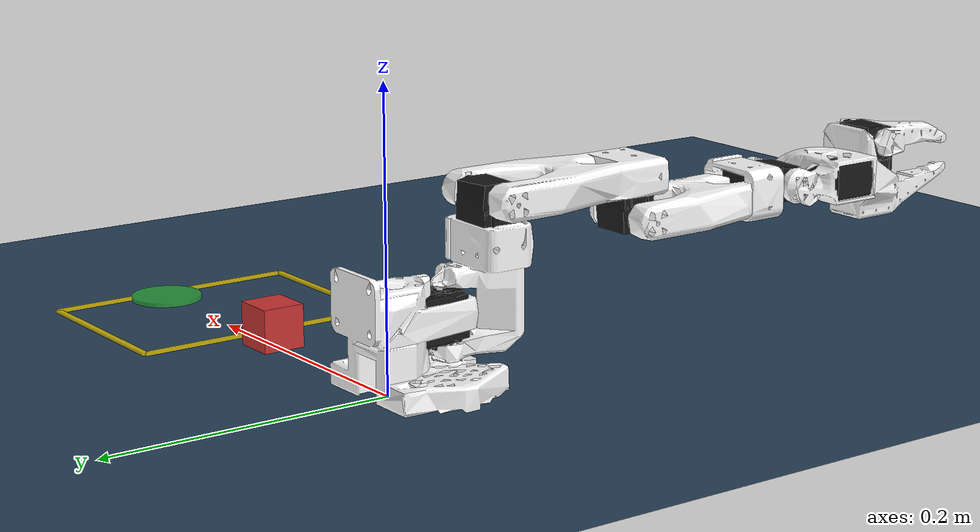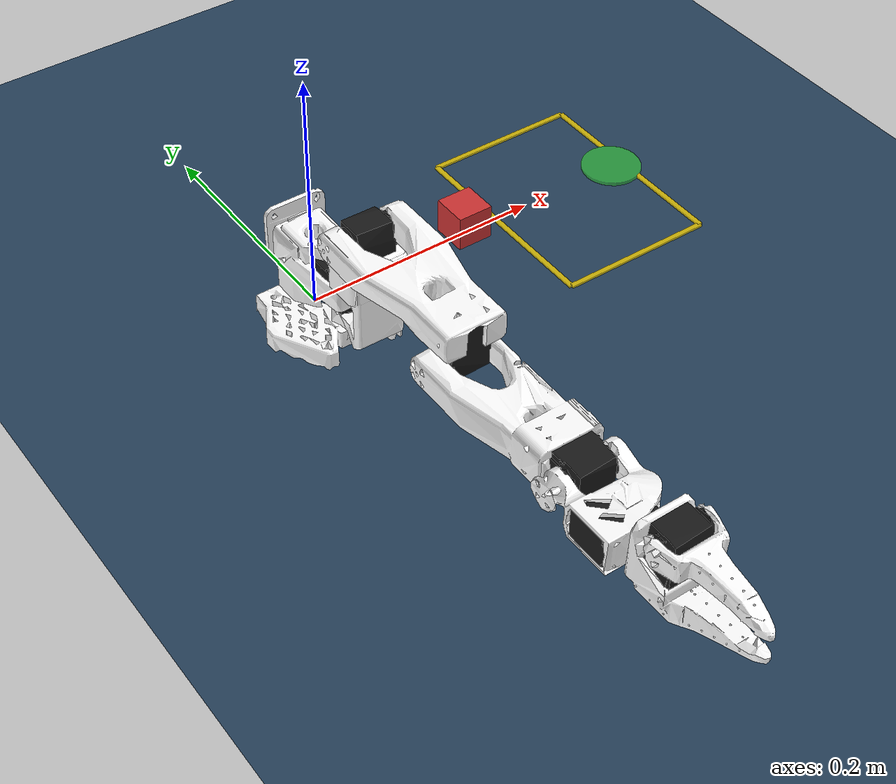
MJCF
<mujoco model="so_arm100_push_scene">
  <include file="./assets_so100/so_arm100_local.xml"/>

  <statistic center="0.235 -0.01 0.08" extent="0.6"/>

  <visual>
    <headlight diffuse="0.6 0.6 0.6" ambient="0.3 0.3 0.3" specular="0 0 0"/>
    <rgba haze="0.15 0.25 0.35 1"/>
    <global azimuth="150" elevation="-20" offwidth="640" offheight="480"/>
  </visual>

  <asset>
    <texture type="skybox" builtin="gradient" rgb1="0.3 0.5 0.7" rgb2="0 0 0"
             width="512" height="3072"/>
    <texture type="2d" name="groundplane" builtin="checker" mark="edge"
             rgb1="0.2 0.3 0.4" rgb2="0.1 0.2 0.3" markrgb="0.8 0.8 0.8"
             width="300" height="300"/>
    <material name="groundplane" texture="groundplane" texuniform="true"
              texrepeat="5 5" reflectance="0.2"/>
  </asset>

  <worldbody>
    <light pos="0 0 1.5" dir="0 0 -1" directional="true"/>

    <geom name="floor" size="0 0 0.05" type="plane" material="groundplane"/>

    <!-- Workspace 边框 (黄色, 不参与碰撞) -->
    <geom name="ws_edge_1" type="box" pos="0.17  -0.01 0.001" size="0.002 0.09 0.001"
          rgba="1 0.85 0 0.8" contype="0" conaffinity="0"/>
    <geom name="ws_edge_2" type="box" pos="0.30  -0.01 0.001" size="0.002 0.09 0.001"
          rgba="1 0.85 0 0.8" contype="0" conaffinity="0"/>
    <geom name="ws_edge_3" type="box" pos="0.235 -0.10 0.001" size="0.065 0.002 0.001"
          rgba="1 0.85 0 0.8" contype="0" conaffinity="0"/>
    <geom name="ws_edge_4" type="box" pos="0.235  0.08 0.001" size="0.065 0.002 0.001"
          rgba="1 0.85 0 0.8" contype="0" conaffinity="0"/>

    <!-- 顶部俯视相机 (固定在 workspace 正上方, 验证视野用) -->
    <camera name="top_cam" pos="0.235 -0.01 0.45"
            xyaxes="1 0 0  0 1 0"/>

    <!-- cube -->
    <body name="cube" pos="0.14 0.00 0.015">
      <freejoint name="cube_free"/>
      <geom name="cube_geom" type="box" size="0.015 0.015 0.015"
            rgba="0.8 0.2 0.2 1"
            mass="0.05"
            friction="1.0 0.005 0.0001"/>
    </body>

    <!-- target (固定位置，在工作区内靠近边缘) -->
    <body name="target" pos="0.29 0.00 0.001">
      <geom name="target_geom" type="cylinder" size="0.025 0.0015"
            rgba="0.2 0.85 0.2 0.6"
            contype="0" conaffinity="0"/>
    </body>
  </worldbody>
</mujoco>

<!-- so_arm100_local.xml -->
<mujoco model="so_arm100">
  <compiler angle="radian" meshdir="/home/aloha/lerobot/env_so100/trs_so_arm100/assets/"/>

  <option cone="elliptic" impratio="10"/>

  <asset>
    <material name="white" rgba="1 1 1 1"/>
    <material name="black" rgba="0.1 0.1 0.1 1"/>

    <mesh name="Base" file="Base.stl"/>
    <mesh name="Base_Motor" file="Base_Motor.stl"/>
    <mesh name="Rotation_Pitch" file="Rotation_Pitch.stl"/>
    <mesh name="Rotation_Pitch_Motor" file="Rotation_Pitch_Motor.stl"/>
    <mesh name="Upper_Arm" file="Upper_Arm.stl"/>
    <mesh name="Upper_Arm_Motor" file="Upper_Arm_Motor.stl"/>
    <mesh name="Lower_Arm" file="Lower_Arm.stl"/>
    <mesh name="Lower_Arm_Motor" file="Lower_Arm_Motor.stl"/>
    <mesh name="Wrist_Pitch_Roll" file="Wrist_Pitch_Roll.stl"/>
    <mesh name="Wrist_Pitch_Roll_Motor" file="Wrist_Pitch_Roll_Motor.stl"/>
    <mesh name="Fixed_Jaw" file="Fixed_Jaw.stl"/>
    <mesh name="Fixed_Jaw_Motor" file="Fixed_Jaw_Motor.stl"/>
    <mesh name="Fixed_Jaw_Collision_1" file="Fixed_Jaw_Collision_1.stl"/>
    <mesh name="Fixed_Jaw_Collision_2" file="Fixed_Jaw_Collision_2.stl"/>
    <mesh name="Moving_Jaw" file="Moving_Jaw.stl"/>
    <mesh name="Moving_Jaw_Collision_1" file="Moving_Jaw_Collision_1.stl"/>
    <mesh name="Moving_Jaw_Collision_2" file="Moving_Jaw_Collision_2.stl"/>
    <mesh name="Moving_Jaw_Collision_3" file="Moving_Jaw_Collision_3.stl"/>
  </asset>

  <default>
    <default class="so_arm100">
      <joint frictionloss="0.1" armature="0.1"/>
      <position kp="50" dampratio="1" forcerange="-3.5 3.5"/>
      <default class="Rotation">
        <joint axis="0 1 0" range="-1.92 1.92"/>
      </default>
      <default class="Pitch">
        <joint axis="1 0 0" range="-3.32 0.174"/>
      </default>
      <default class="Elbow">
        <joint axis="1 0 0" range="-0.174 3.14"/>
      </default>
      <default class="Wrist_Pitch">
        <joint axis="1 0 0" range="-1.66 1.66"/>
      </default>
      <default class="Wrist_Roll">
        <joint axis="0 1 0" range="-2.79 2.79"/>
      </default>
      <default class="Jaw">
        <joint axis="0 0 1" range="-0.174 1.75"/>
      </default>
      <default class="visual">
        <geom type="mesh" contype="0" conaffinity="0" density="0" group="2" material="white"/>
        <default class="motor_visual">
          <geom material="black"/>
        </default>
      </default>
      <default class="collision">
        <geom group="3" type="mesh" material="white"/>
        <default class="finger_collision">
          <geom type="box" solimp="2 1 0.01" solref="0.01 1" friction="1 0.005 0.0001"/>
        </default>
      </default>
    </default>
  </default>

  <worldbody>
    <body name="Base" childclass="so_arm100">
      <geom type="mesh" mesh="Base" class="visual"/>
      <geom type="mesh" mesh="Base_Motor" class="motor_visual"/>
      <geom type="mesh" mesh="Base" class="collision"/>
      <body name="Rotation_Pitch" pos="0 -0.0452 0.0165" quat="0.707105 0.707108 0 0">
        <inertial pos="-9.07886e-05 0.0590972 0.031089" quat="0.363978 0.441169 -0.623108 0.533504" mass="0.119226"
          diaginertia="5.94278e-05 5.89975e-05 3.13712e-05"/>
        <joint name="Rotation" class="Rotation"/>
        <geom type="mesh" mesh="Rotation_Pitch" class="visual"/>
        <geom type="mesh" mesh="Rotation_Pitch_Motor" class="motor_visual"/>
        <geom type="mesh" mesh="Rotation_Pitch" class="collision"/>
        <body name="Upper_Arm" pos="0 0.1025 0.0306" euler="1.57079 0 0">
          <inertial pos="-1.72052e-05 0.0701802 0.00310545" quat="0.50104 0.498994 -0.493562 0.50632" mass="0.162409"
            diaginertia="0.000213312 0.000167164 7.01522e-05"/>
          <joint name="Pitch" class="Pitch"/>
          <geom type="mesh" mesh="Upper_Arm" class="visual"/>
          <geom type="mesh" mesh="Upper_Arm_Motor" class="motor_visual"/>
          <geom type="mesh" mesh="Upper_Arm" class="collision"/>
          <body name="Lower_Arm" pos="0 0.11257 0.028" euler="-1.57079 0 0">
            <inertial pos="-0.00339604 0.00137796 0.0768007" quat="0.701995 0.0787996 0.0645626 0.704859"
              mass="0.147968" diaginertia="0.000138803 0.000107748 4.84242e-05"/>
            <joint name="Elbow" class="Elbow"/>
            <geom type="mesh" mesh="Lower_Arm" class="visual"/>
            <geom type="mesh" mesh="Lower_Arm_Motor" class="motor_visual"/>
            <geom type="mesh" mesh="Lower_Arm" class="collision"/>
            <body name="Wrist_Pitch_Roll" pos="0 0.0052 0.1349" euler="-1.57079 0 0">
              <inertial pos="-0.00852653 -0.0352279 -2.34622e-05" quat="-0.0522806 0.705235 0.0549524 0.704905"
                mass="0.0661321" diaginertia="3.45403e-05 2.39041e-05 1.94704e-05"/>
              <joint name="Wrist_Pitch" class="Wrist_Pitch"/>
              <geom type="mesh" mesh="Wrist_Pitch_Roll" class="visual"/>
              <geom type="mesh" mesh="Wrist_Pitch_Roll_Motor" class="motor_visual"/>
              <geom type="mesh" mesh="Wrist_Pitch_Roll" class="collision"/>
              <body name="Fixed_Jaw" pos="0 -0.0601 0" euler="0 1.57079 0">
                <inertial pos="0.00552377 -0.0280167 0.000483583" quat="0.41836 0.620891 -0.350644 0.562599"
                  mass="0.0929859" diaginertia="5.03136e-05 4.64098e-05 2.72961e-05"/>
                <joint name="Wrist_Roll" class="Wrist_Roll"/>
                <geom type="mesh" mesh="Fixed_Jaw" class="visual"/>
                <geom type="mesh" mesh="Fixed_Jaw_Motor" class="motor_visual"/>
                <geom type="mesh" mesh="Fixed_Jaw_Collision_1" class="collision"/>
                <geom type="mesh" mesh="Fixed_Jaw_Collision_2" class="collision"/>
                <geom class="finger_collision" name="fixed_jaw_pad_1" size="0.001 0.005 0.004" pos="0.0089 -0.1014 0"/>
                <geom class="finger_collision" name="fixed_jaw_pad_2" size="0.001 0.005 0.006" pos="0.0109 -0.0914 0"/>
                <geom class="finger_collision" name="fixed_jaw_pad_3" size="0.001 0.01 0.007" pos="0.0126 -0.0768 0"/>
                <geom class="finger_collision" name="fixed_jaw_pad_4" size="0.001 0.01 0.008" pos="0.0143 -0.0572 0"/>
                <camera name="wrist_cam" pos="0 0 0.07"
                        euler="5 0 0"/>
                <body name="Moving_Jaw" pos="-0.0202 -0.0244 0" quat="1.34924e-11 -3.67321e-06 1 -3.67321e-06">
                  <inertial pos="-0.00161745 -0.0303473 0.000449646" quat="0.696562 0.716737 -0.0239844 -0.0227026"
                    mass="0.0202444" diaginertia="1.11265e-05 8.99651e-06 2.99548e-06"/>
                  <joint name="Jaw" class="Jaw"/>
                  <geom type="mesh" mesh="Moving_Jaw" class="visual"/>
                  <geom type="mesh" mesh="Moving_Jaw_Collision_1" class="collision"/>
                  <geom type="mesh" mesh="Moving_Jaw_Collision_2" class="collision"/>
                  <geom type="mesh" mesh="Moving_Jaw_Collision_3" class="collision"/>
                  <geom class="finger_collision" name="moving_jaw_pad_1" size="0.001 0.005 0.004" pos="-0.0113 -0.077 0"/>
                  <geom class="finger_collision" name="moving_jaw_pad_2" size="0.001 0.005 0.006" pos="-0.0093 -0.067 0"/>
                  <geom class="finger_collision" name="moving_jaw_pad_3" size="0.001 0.01 0.006" pos="-0.0073 -0.055 0"/>
                  <geom class="finger_collision" name="moving_jaw_pad_4" size="0.001 0.01 0.008" pos="-0.0073 -0.035 0"/>
                </body>
              </body>
            </body>
          </body>
        </body>
      </body>
    </body>
  </worldbody>

  <actuator>
    <position class="Rotation" name="Rotation" joint="Rotation" inheritrange="1"/>
    <position class="Pitch" name="Pitch" joint="Pitch" inheritrange="1"/>
    <position class="Elbow" name="Elbow" joint="Elbow" inheritrange="1"/>
    <position class="Wrist_Pitch" name="Wrist_Pitch" joint="Wrist_Pitch" inheritrange="1"/>
    <position class="Wrist_Roll" name="Wrist_Roll" joint="Wrist_Roll" inheritrange="1"/>
    <position class="Jaw" name="Jaw" joint="Jaw" inheritrange="1"/>
  </actuator>

  <contact>
    <exclude body1="Base" body2="Rotation_Pitch"/>
  </contact>

  <keyframe>
    <key name="home" qpos="0 -1.57 1.57 1.57 -1.57 0" ctrl="0 -1.57 1.57 1.57 -1.57 0"/>
    <key name="rest" qpos="0 -3.32 3.11 1.18 0 -0.174" ctrl="0 -3.32 3.11 1.18 0 -0.174"/>
  </keyframe>
</mujoco>
